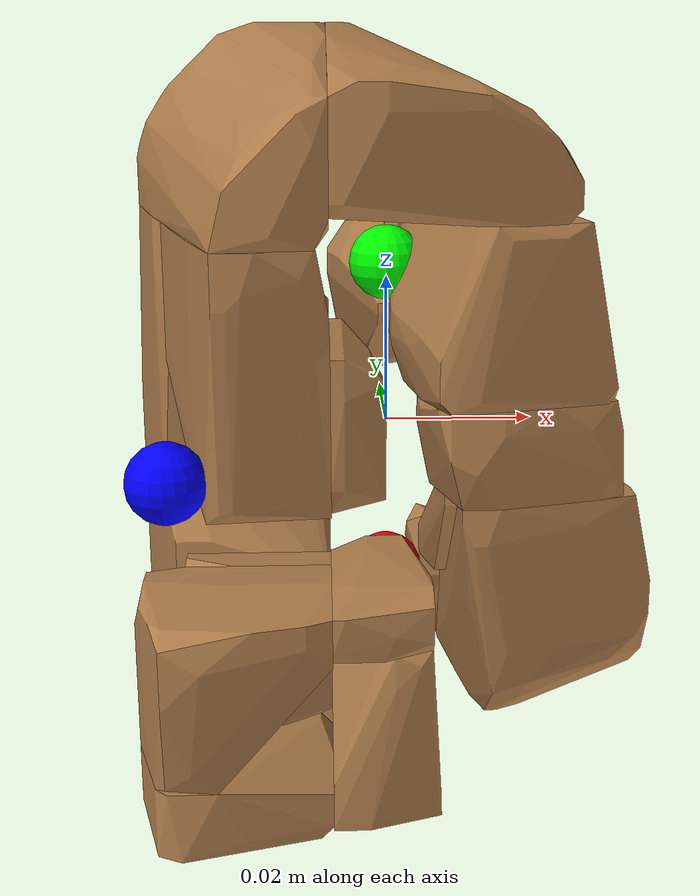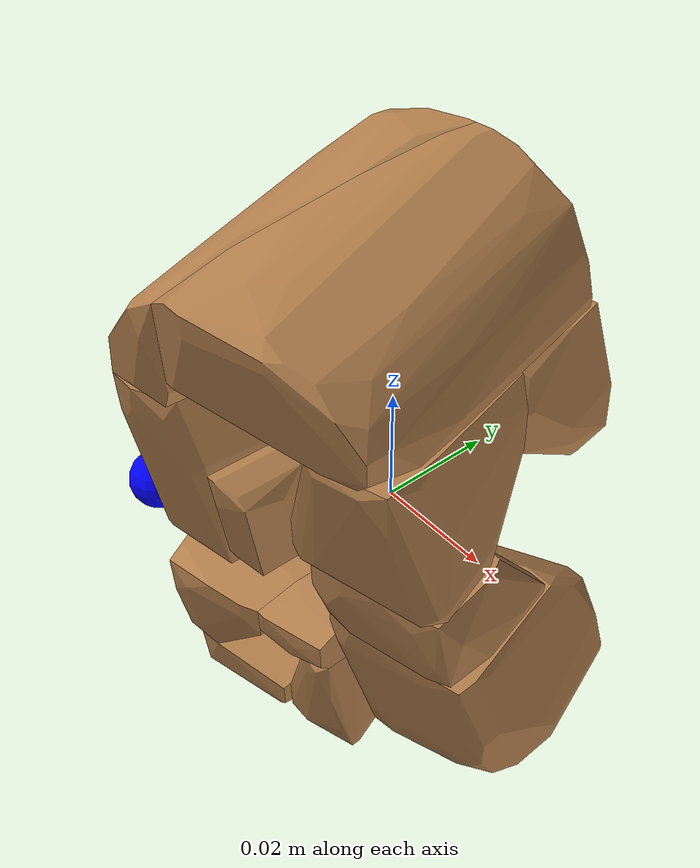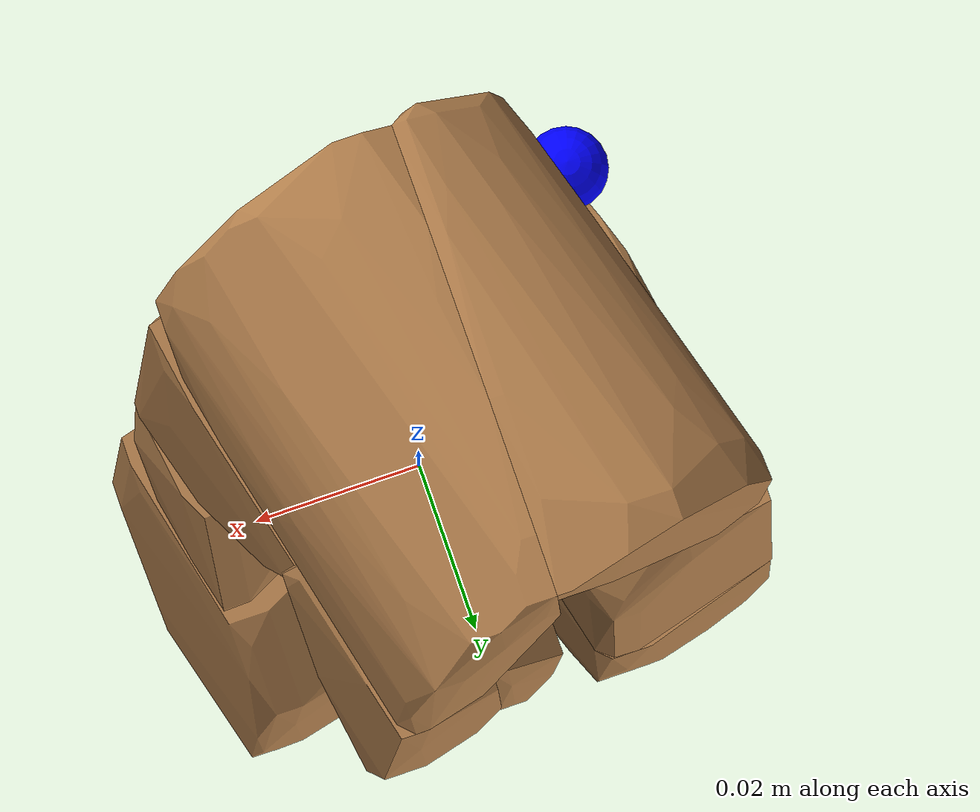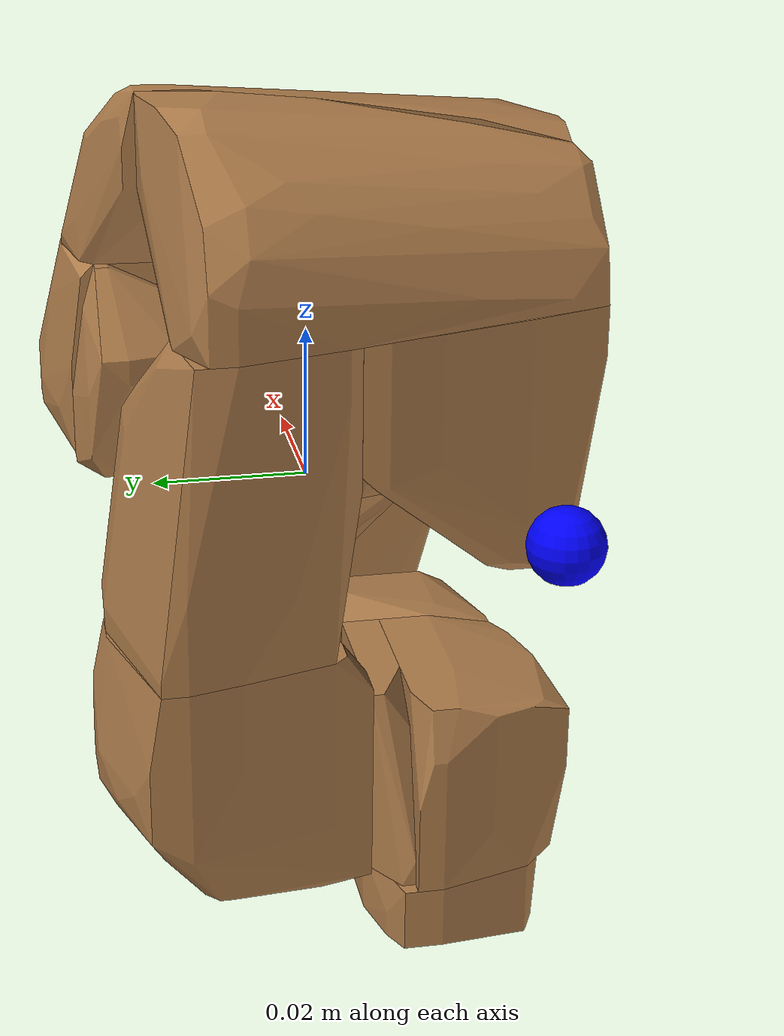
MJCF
<mujoco model="bar_clamp">
    <compiler angle="radian" />
    <size njmax="500" nconmax="100" />
    <asset>
        <texture type="2d" name="tex-bar_clamp" file="../textures/dark-wood.png" />
        <material name="bar_clamp" texture="tex-bar_clamp" texuniform="true" texrepeat="15 15" reflectance="0.7" />
        <mesh name="bar_clamp_mesh_1" file="./meshes/1_bar_clamp.stl" scale="0.9 0.9 0.9" />
        <mesh name="bar_clamp_mesh_2" file="./meshes/2_bar_clamp.stl" scale="0.9 0.9 0.9" />
        <mesh name="bar_clamp_mesh_3" file="./meshes/3_bar_clamp.stl" scale="0.9 0.9 0.9" />
        <mesh name="bar_clamp_mesh_4" file="./meshes/4_bar_clamp.stl" scale="0.9 0.9 0.9" />
        <mesh name="bar_clamp_mesh_5" file="./meshes/5_bar_clamp.stl" scale="0.9 0.9 0.9" />
        <mesh name="bar_clamp_mesh_6" file="./meshes/6_bar_clamp.stl" scale="0.9 0.9 0.9" />
        <mesh name="bar_clamp_mesh_7" file="./meshes/7_bar_clamp.stl" scale="0.9 0.9 0.9" />
        <mesh name="bar_clamp_mesh_8" file="./meshes/8_bar_clamp.stl" scale="0.9 0.9 0.9" />
        <mesh name="bar_clamp_mesh_9" file="./meshes/9_bar_clamp.stl" scale="0.9 0.9 0.9" />
        <mesh name="bar_clamp_mesh_10" file="./meshes/10_bar_clamp.stl" scale="0.9 0.9 0.9" />
        <mesh name="bar_clamp_mesh_11" file="./meshes/11_bar_clamp.stl" scale="0.9 0.9 0.9" />
        <mesh name="bar_clamp_mesh_12" file="./meshes/12_bar_clamp.stl" scale="0.9 0.9 0.9" />
        <mesh name="bar_clamp_mesh_13" file="./meshes/13_bar_clamp.stl" scale="0.9 0.9 0.9" />
        <mesh name="bar_clamp_mesh_14" file="./meshes/14_bar_clamp.stl" scale="0.9 0.9 0.9" />
        <mesh name="bar_clamp_mesh_15" file="./meshes/15_bar_clamp.stl" scale="0.9 0.9 0.9" />
        <mesh name="bar_clamp_mesh_16" file="./meshes/16_bar_clamp.stl" scale="0.9 0.9 0.9" />
        <mesh name="bar_clamp_mesh_17" file="./meshes/17_bar_clamp.stl" scale="0.9 0.9 0.9" />
        <mesh name="bar_clamp_mesh_18" file="./meshes/18_bar_clamp.stl" scale="0.9 0.9 0.9" />
    </asset>
    <worldbody>
        <body name="bar_clamp" pos="0 0 0" quat="0 0 0 1">
            <inertial pos="0 0 0" mass="0" diaginertia="0 0 0" />
            <site name="bottom_site" pos="0 0 -0.0219484" rgba="1 0 0 1" />
            <site name="top_site" pos="0 0 0.0219484" rgba="0 1 0 1" />
            <site name="horizontal_radius_site" pos="0.0274355 0.0274355 0" rgba="0 0 1 1" />
            <site name="vertical_radius_site" pos="0 0 0.0438969" rgba="0 0 0 1" />
            <body name="object" pos="0 0 0" quat="0 0 0 1">
                <inertial pos="0.00028402 0.00576109 -0.0031155" quat="0.901439 0.41072 0.0960687 -0.0974081" mass="0.525" diaginertia="0.000750585 0.000729682 0.000489769" />
                <geom name="1_bar_clamp" group="0" type="mesh" condim="4" friction="0.95 0.3 0.1" solref="0.001 1" solimp="0.998 0.998 0.001 0.5 2" material="bar_clamp" mesh="bar_clamp_mesh_1" />
                <geom name="2_bar_clamp" group="0" type="mesh" condim="4" friction="0.95 0.3 0.1" solref="0.001 1" solimp="0.998 0.998 0.001 0.5 2" material="bar_clamp" mesh="bar_clamp_mesh_2" />
                <geom name="3_bar_clamp" group="0" type="mesh" condim="4" friction="0.95 0.3 0.1" solref="0.001 1" solimp="0.998 0.998 0.001 0.5 2" material="bar_clamp" mesh="bar_clamp_mesh_3" />
                <geom name="4_bar_clamp" group="0" type="mesh" condim="4" friction="0.95 0.3 0.1" solref="0.001 1" solimp="0.998 0.998 0.001 0.5 2" material="bar_clamp" mesh="bar_clamp_mesh_4" />
                <geom name="5_bar_clamp" group="0" type="mesh" condim="4" friction="0.95 0.3 0.1" solref="0.001 1" solimp="0.998 0.998 0.001 0.5 2" material="bar_clamp" mesh="bar_clamp_mesh_5" />
                <geom name="6_bar_clamp" group="0" type="mesh" condim="4" friction="0.95 0.3 0.1" solref="0.001 1" solimp="0.998 0.998 0.001 0.5 2" material="bar_clamp" mesh="bar_clamp_mesh_6" />
                <geom name="7_bar_clamp" group="0" type="mesh" condim="4" friction="0.95 0.3 0.1" solref="0.001 1" solimp="0.998 0.998 0.001 0.5 2" material="bar_clamp" mesh="bar_clamp_mesh_7" />
                <geom name="8_bar_clamp" group="0" type="mesh" condim="4" friction="0.95 0.3 0.1" solref="0.001 1" solimp="0.998 0.998 0.001 0.5 2" material="bar_clamp" mesh="bar_clamp_mesh_8" />
                <geom name="9_bar_clamp" group="0" type="mesh" condim="4" friction="0.95 0.3 0.1" solref="0.001 1" solimp="0.998 0.998 0.001 0.5 2" material="bar_clamp" mesh="bar_clamp_mesh_9" />
                <geom name="10_bar_clamp" group="0" type="mesh" condim="4" friction="0.95 0.3 0.1" solref="0.001 1" solimp="0.998 0.998 0.001 0.5 2" material="bar_clamp" mesh="bar_clamp_mesh_10" />
                <geom name="11_bar_clamp" group="0" type="mesh" condim="4" friction="0.95 0.3 0.1" solref="0.001 1" solimp="0.998 0.998 0.001 0.5 2" material="bar_clamp" mesh="bar_clamp_mesh_11" />
                <geom name="12_bar_clamp" group="0" type="mesh" condim="4" friction="0.95 0.3 0.1" solref="0.001 1" solimp="0.998 0.998 0.001 0.5 2" material="bar_clamp" mesh="bar_clamp_mesh_12" />
                <geom name="13_bar_clamp" group="0" type="mesh" condim="4" friction="0.95 0.3 0.1" solref="0.001 1" solimp="0.998 0.998 0.001 0.5 2" material="bar_clamp" mesh="bar_clamp_mesh_13" />
                <geom name="14_bar_clamp" group="0" type="mesh" condim="4" friction="0.95 0.3 0.1" solref="0.001 1" solimp="0.998 0.998 0.001 0.5 2" material="bar_clamp" mesh="bar_clamp_mesh_14" />
                <geom name="15_bar_clamp" group="0" type="mesh" condim="4" friction="0.95 0.3 0.1" solref="0.001 1" solimp="0.998 0.998 0.001 0.5 2" material="bar_clamp" mesh="bar_clamp_mesh_15" />
                <geom name="16_bar_clamp" group="0" type="mesh" condim="4" friction="0.95 0.3 0.1" solref="0.001 1" solimp="0.998 0.998 0.001 0.5 2" material="bar_clamp" mesh="bar_clamp_mesh_16" />
                <geom name="17_bar_clamp" group="0" type="mesh" condim="4" friction="0.95 0.3 0.1" solref="0.001 1" solimp="0.998 0.998 0.001 0.5 2" material="bar_clamp" mesh="bar_clamp_mesh_17" />
                <geom name="18_bar_clamp" group="0" type="mesh" condim="4" friction="0.95 0.3 0.1" solref="0.001 1" solimp="0.998 0.998 0.001 0.5 2" material="bar_clamp" mesh="bar_clamp_mesh_18" />
            </body>
        </body>
    </worldbody>
</mujoco>
